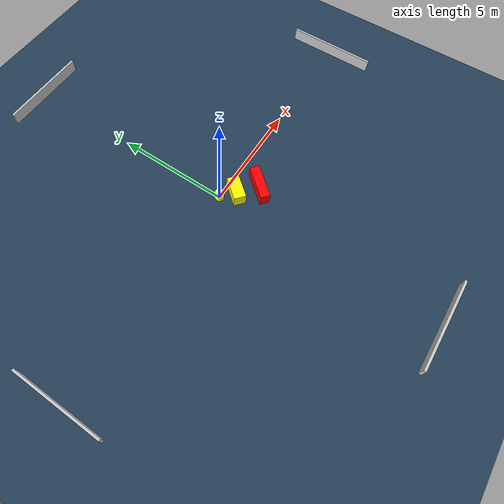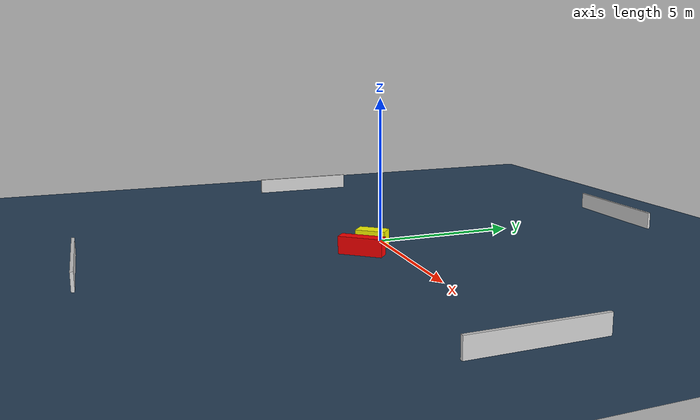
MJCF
<?xml version="1.0" ?>
<mujoco model="generated_environment">
  <option timestep="0.01" integrator="RK4" cone="elliptic"/>
  <default>
    <geom density="1"/>
  </default>
  <asset>
    <texture builtin="gradient" height="3072" name="skybox" rgb1="0.3 0.5 0.7" rgb2="0 0 0" type="skybox" width="512"/>
    <texture builtin="checker" height="300" name="groundplane" rgb1="0.2 0.3 0.4" rgb2="0.1 0.2 0.3" type="2d" width="300"/>
    <material name="groundplane" reflectance="0.2" texrepeat="5 5" texture="groundplane"/>
  </asset>
  <worldbody>
    <light dir="0 0 -1" directional="true" pos="0 0 1.5"/>
    <geom condim="3" friction="0.5 0.005 0.001" material="groundplane" name="floor" pos="0 0 0" size="0 0 0.05" type="plane"/>
    <body name="walls">
      <geom name="wall_1" condim="4" pos="-10.0 0.0 0.3" rgba="0.800000011920929 0.800000011920929 0.800000011920929 1.0" size="0.05 2.0 0.3" type="box"/>
      <geom name="wall_2" condim="4" pos="10.0 0.0 0.3" rgba="0.800000011920929 0.800000011920929 0.800000011920929 1.0" size="0.05 2.0 0.3" type="box"/>
      <geom name="wall_3" condim="4" pos="0.0 -10.0 0.3" rgba="0.800000011920929 0.800000011920929 0.800000011920929 1.0" size="2.0 0.05 0.3" type="box"/>
      <geom name="wall_4" condim="4" pos="0.0 10.0 0.3" rgba="0.800000011920929 0.800000011920929 0.800000011920929 1.0" size="2.0 0.05 0.3" type="box"/>
    </body>
    <body name="robot">
      <joint name="joint_x" type="slide" pos="0 0 0" axis="1 0 0"/>
      <joint name="joint_y" type="slide" pos="0 0 0" axis="0 1 0"/>
      <geom name="robot" type="cylinder" pos="0.0 0.0 0.2" size="0.2 0.2 0.0" mass="5.0" friction="1.0 0.005 0.0001" condim="4" rgba="1.0 1.0 0.0 1.0"/>
    </body>
    <body name="obstacle_1_movable">
      <geom name="obstacle_1_movable" condim="4" pos="0.5326653166602119 -0.5013818798347884 0.3" euler="0 0 230.31069916631932" friction="0.0 0.005 0.001" rgba="1.0 1.0 0.0 1.0" size="0.520830699566971 0.2635675528997517 0.3" type="box" mass="0.1"/>
      <joint type="free"/>
    </body>
    <body name="obstacle_2_static">
      <geom name="obstacle_2_static" condim="4" pos="1.3134216399471097 -1.172885816894816 0.3" euler="0 0 319.9148412234971" friction="0.0 0.005 0.001" rgba="1.0 0.0 0.0 1.0" size="0.21160781223975084 0.757953075226447 0.3" type="box"/>
    </body>
  </worldbody>
  <actuator>
    <motor name="actuator_x" joint="joint_x" gear="1" ctrlrange="-1 1"/>
    <motor name="actuator_y" joint="joint_y" gear="1" ctrlrange="-1 1"/>
  </actuator>
</mujoco>
